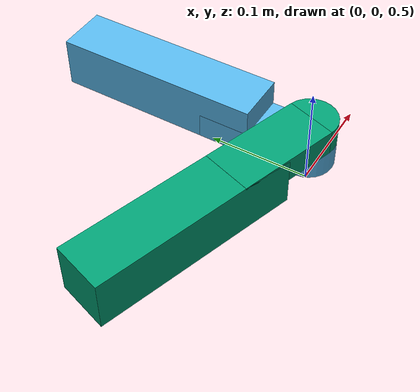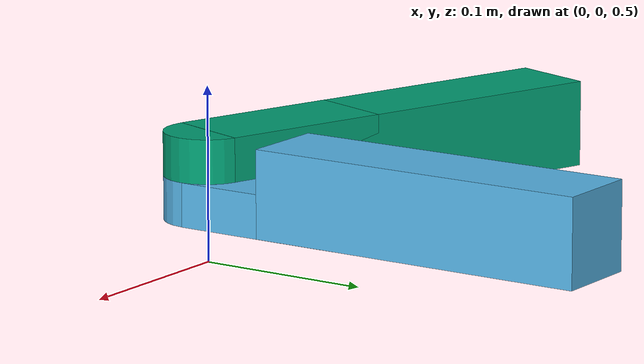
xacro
<?xml version="1.0"?>
<robot xmlns:xacro="http://www.ros.org/wiki/xacro" name="floating_base_1R1P_2Link">
  <!-- |    Author: Yeshasvi Tirupachuri                                                 | -->
  <!-- |    Date: 31 AUGUST 2016                                                           | -->
  <!-- |    Email: Yeshasvi.Tirupachuri@iit.it                                           | -->
  <!-- |    Institute: RBCS Department, Italian Institute of Technology, Genova          | -->
  <!-- |    Description: Xacro file for 2R Manipulator                                   | -->
  <!-- |    for URDF: rosrun xacro xacro model.xacro > model.urdf                        | -->
  <!-- |    for SDF: gz sdf -p model.urdf > model.sdf                                    | -->

<!--XACRO: Axis Rotation - 180 Degree/ Pi Radians-->
<xacro:property name="angle" value="3.14"/>

<!--XACRO: Inertia Value-->
<xacro:property name="inertia" value="0.001"/>

<!--XACRO: Small Rectangle-->
<xacro:property name="length_small_box" value="0.05"/>
<xacro:property name="width_small_box" value="${length_small_box*2}"/>
<xacro:property name="height_small_box" value="${length_small_box/2}"/>

<!--XACRO: Small Cylinder-->
<xacro:property name="length_small_cylinder" value="${height_small_box}"/>
<xacro:property name="radius_small_cylinder" value="${length_small_box/2}"/>

<!--XACRO: First Link Rectangle-->
<xacro:property name="length_link1_box" value="0.05"/>
<xacro:property name="width_link1_box" value="0.2"/>
<xacro:property name="height_link1_box" value="0.05"/>

<!--XACRO: Second Link Rectangle-->
<xacro:property name="length_middle_box" value="0.05"/>
<xacro:property name="width_middle_box" value="0.2"/>
<xacro:property name="height_middle_box" value="0.05"/>

<!--XACRO: Second Link Rectangle-->
<xacro:property name="length_link2_box" value="0.05"/>
<xacro:property name="width_link2_box" value="0.2"/>
<xacro:property name="height_link2_box" value="0.05"/>

<!--XACRO: Link Masses-->
<xacro:property name="first_link_mass" value="1"/>
<xacro:property name="second_link_mass" value="1"/>

<!--XACRO: Link Inertia Value-->
<xacro:property name="first_link_inertia_xx" value="${inertia}"/>
<xacro:property name="first_link_inertia_yy" value="${inertia}"/>
<xacro:property name="first_link_inertia_zz" value="${inertia}"/>

<xacro:property name="second_link_inertia_xx" value="${inertia}"/>
<xacro:property name="second_link_inertia_yy" value="${inertia}"/>
<xacro:property name="second_link_inertia_zz" value="${inertia}"/>

<link name="world" />

<!--First Link-->
<link name="first_link">

  <inertial>
    <origin xyz="0 ${radius_small_cylinder*3/2+length_small_box*3/2+length_link1_box/2} 0" rpy="0 0 0"/>
    <mass value="${first_link_mass}" />
    <inertia ixx="${first_link_inertia_xx}" iyy="${first_link_inertia_yy}" izz="${first_link_inertia_zz}" ixy="0" ixz="0" iyz="0" />
  </inertial>

  <!--First Link Small Cylinder - Front -->
    <visual>
      <origin xyz="0 0 -0.0125" rpy="0 0 0"/>
      <geometry>
        <cylinder length="${length_small_cylinder}" radius="${radius_small_cylinder}"/>
        <material name="white">
          <color rgba="1.0 1.0 1.0 1.0"/>
        </material>
      </geometry>
    </visual>

    <collision>
      <origin xyz="0 0 -0.01255" rpy="0 0 0"/>
      <geometry>
        <cylinder length="${length_small_cylinder}" radius="${radius_small_cylinder}"/>
      </geometry>
    </collision>

    <!--First Link Small Box - Front -->
      <visual>
        <origin xyz="0 ${radius_small_cylinder*2} -0.01255" rpy="0 0 0"/>
        <geometry>
          <box size="${length_small_box} ${width_small_box} ${height_small_box}"/>
          <material name="white">
            <color rgba="1.0 1.0 1.0 1.0"/>
          </material>
        </geometry>
      </visual>

      <collision>
        <origin xyz="0 ${radius_small_cylinder*2} -0.0125" rpy="0 0 0"/>
        <geometry>
          <box size="${length_small_box} ${width_small_box} ${height_small_box}"/>
        </geometry>
      </collision>

      <!--First Link Box-->
        <visual>
          <origin xyz="0 ${radius_small_cylinder*6} 0" rpy="0 0 0"/>
          <geometry>
            <box size="${length_link1_box} ${width_link1_box} ${height_link1_box}"/>
            <material name="white">
              <color rgba="1.0 1.0 1.0 1.0"/>
            </material>
          </geometry>
        </visual>

        <collision>
          <origin xyz="0 ${radius_small_cylinder*6} 0" rpy="0 0 0"/>
          <geometry>
            <box size="${length_link1_box} ${width_link1_box} ${height_link1_box}"/>
          </geometry>
        </collision>

</link>

<!--Middle Link-->
<link name="middle_link">

  <inertial>
    <origin xyz="0 ${radius_small_cylinder*3/2+length_small_box*3/2+length_link2_box/2} 0" rpy="0 0 0"/>
    <mass value="${second_link_mass}" />
    <inertia ixx="${second_link_inertia_xx}" iyy="${second_link_inertia_yy}" izz="${second_link_inertia_zz}" ixy="0" ixz="0" iyz="0" />
  </inertial>

  <!--Middle Link Small Cylinder - Front -->
    <visual>
      <origin xyz="0 0 0.0125" rpy="0 0 0"/>
      <geometry>
        <cylinder length="${length_small_cylinder}" radius="${radius_small_cylinder}"/>
        <material name="white">
          <color rgba="1.0 1.0 1.0 1.0"/>
        </material>
      </geometry>
    </visual>

    <collision>
      <origin xyz="0 0 0.01255" rpy="0 0 0"/>
      <geometry>
        <cylinder length="${length_small_cylinder}" radius="${radius_small_cylinder}"/>
      </geometry>
    </collision>

    <!--Middle Link Small Box - Front -->
      <visual>
        <origin xyz="0 ${radius_small_cylinder*2} 0.01255" rpy="0 0 0"/>
        <geometry>
          <box size="${length_small_box} ${width_small_box} ${height_small_box}"/>
          <material name="white">
            <color rgba="1.0 1.0 1.0 1.0"/>
          </material>
        </geometry>
      </visual>

      <collision>
        <origin xyz="0 ${radius_small_cylinder*2} 0.0125" rpy="0 0 0"/>
        <geometry>
          <box size="${length_small_box} ${width_small_box} ${height_small_box}"/>
        </geometry>
      </collision>

      <!--Middle Link Box-->
        <visual>
          <origin xyz="0 ${radius_small_cylinder*6} 0" rpy="0 0 0"/>
          <geometry>
            <box size="${length_middle_box} ${width_middle_box} ${height_middle_box}"/>
            <material name="white">
              <color rgba="1.0 1.0 1.0 1.0"/>
            </material>
          </geometry>
        </visual>

        <collision>
          <origin xyz="0 ${radius_small_cylinder*6} 0" rpy="0 0 0"/>
          <geometry>
            <box size="${length_middle_box} ${width_middle_box} ${height_middle_box}"/>
          </geometry>
        </collision>
</link>

<link name="second_link">

  <inertial>
    <origin xyz="0 ${radius_small_cylinder*3/2+length_small_box*3/2+length_link2_box/2} 0" rpy="0 0 0"/>
    <mass value="${second_link_mass}" />
    <inertia ixx="${second_link_inertia_xx}" iyy="${second_link_inertia_yy}" izz="${second_link_inertia_zz}" ixy="0" ixz="0" iyz="0" />
  </inertial>

  <!--First Link Box-->
    <visual>
      <origin xyz="0 ${radius_small_cylinder*6} 0" rpy="0 0 0"/>
      <geometry>
        <box size="${length_link2_box} ${width_link2_box} ${height_link2_box}"/>
        <material name="white">
          <color rgba="1.0 1.0 1.0 1.0"/>
        </material>
      </geometry>
    </visual>

    <collision>
      <origin xyz="0 ${radius_small_cylinder*6} 0" rpy="0 0 0"/>
      <geometry>
        <box size="${length_link2_box} ${width_link2_box} ${height_link2_box}"/>
      </geometry>
    </collision>

</link>

<!--Joints-->
<joint name="anchor" type="fixed">
  <parent link="world"/>
  <child link="first_link"/>
  <origin xyz="0 0 0.55" rpy="0 0 0"/>
</joint>

<joint name="first_joint" type="revolute">
  <parent link="first_link"/>
  <child link="middle_link"/>
  <origin xyz="0 0 0" rpy="0 0 ${angle/2.5}"/>
  <axis xyz="0 0 1" />
  <calibration rising="1"/>
  <dynamic damping="0.0" friction="0.0"/>
  <limit effort="30" lower="0" upper="${angle/2}" velocity="1.0"/>
  <safety_controller k_velocity="10" k_position="15" soft_lower_limit="-1.5" soft_upper_limit="1.5"/>
</joint>

<joint name="second_joint" type="prismatic">
  <parent link="middle_link"/>
  <child link="second_link"/>
  <origin xyz="0 0 0" rpy="0 0 0"/>
  <axis xyz="0 1 0" />
  <calibration rising="1"/>
  <dynamic damping="0.0" friction="0.0"/>
  <limit effort="30" lower="0" upper="${width_link2_box}" velocity="1.0"/>
  <safety_controller k_velocity="10" k_position="15" soft_lower_limit="-1.5" soft_upper_limit="1.5"/>
</joint>

</robot>
